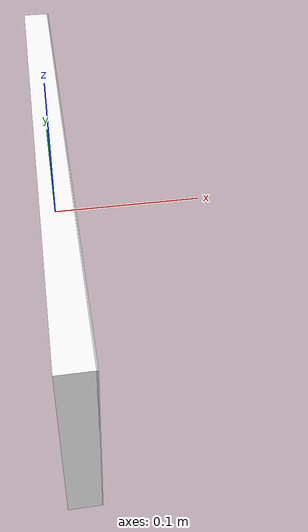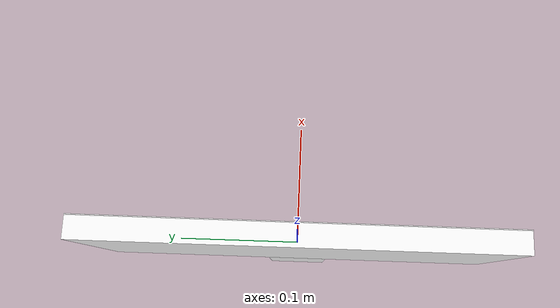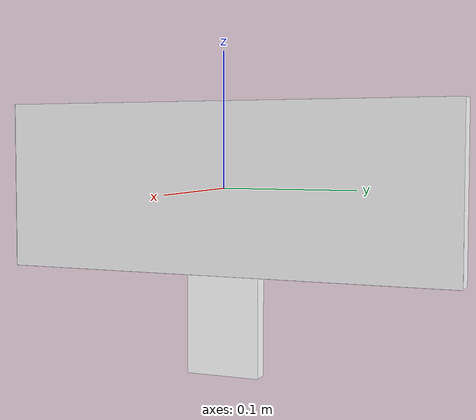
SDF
<?xml version='1.0'?>
<sdf version='1.7'>
<plugin filename="gz-sim-contact-system"
          name="gz::sim::systems::Contact">
    </plugin>
  <model name='start_sign'>
    <link name='link_0'>
      <inertial>
        <mass>1</mass>
        <inertia>
          <ixx>1</ixx>
          <ixy>0</ixy>
          <ixz>0</ixz>
          <iyy>1</iyy>
          <iyz>0</iyz>
          <izz>1</izz>
        </inertia>

      </inertial>
      <pose>0 -0 0 0 -0 0</pose>
      <self_collide>0</self_collide>
      <enable_wind>0</enable_wind>
      <kinematic>0</kinematic>
      <visual name='visual'>
        <pose>0 0 0 0 -0 0</pose>
        <geometry>
          <box>
            <size>0.01897 0.348892 0.127526</size>
          </box>
        </geometry>
        <material>
          <diffuse>1.0 1.0 1.0</diffuse>
          <specular>1.0 1.0 1.0</specular>
          <pbr>
          <metal>
          <albedo_map>materials/textures/green.png</albedo_map>
          </metal>
          </pbr>
          <shader type='pixel'/>
        </material>
        <transparency>0</transparency>
        <cast_shadows>1</cast_shadows>
      </visual>

      <collision name='collision'>
        <laser_retro>0</laser_retro>
        <max_contacts>10</max_contacts>
        <pose>0 0 0 0 -0 0</pose>
        <geometry>
          <box>
            <size>0.01897 0.348892 0.127526</size>
          </box>
        </geometry>

      </collision>
    <sensor name='sensor_contact' type='contact'>
          <contact>
            <collision>collision</collision>
            <topic>/collision_detect</topic>
          </contact>
          <always_on>1</always_on>
          <update_rate>100</update_rate>
        </sensor>
    </link>
    <link name='link_2'>
      <inertial>
        <mass>1</mass>
        <inertia>
          <ixx>1</ixx>
          <ixy>0</ixy>
          <ixz>0</ixz>
          <iyy>1</iyy>
          <iyz>0</iyz>
          <izz>1</izz>
        </inertia>

      </inertial>
      <pose>0.009485 -0 0 0 -0 0</pose>
      <self_collide>0</self_collide>
      <enable_wind>0</enable_wind>
      <kinematic>0</kinematic>
      <visual name='visual'>
        <pose>0 0 0 0 -0 0</pose>
        <geometry>
          <box>
            <size>0.001 0.348892 0.127526</size>
          </box>
        </geometry>
        <material>
          <diffuse>1.0 1.0 1.0</diffuse>
          <specular>1.0 1.0 1.0</specular>
          <pbr>
          <metal>
          <albedo_map>materials/textures/start.png</albedo_map>
          </metal>
          </pbr>
          <shader type='pixel'/>
        </material>
        <transparency>0.2</transparency>
        <cast_shadows>0</cast_shadows>
      </visual>
      <collision name='collision'>
        <laser_retro>0</laser_retro>
        <max_contacts>10</max_contacts>
        <pose>0 0 0 0 -0 0</pose>
        <geometry>
          <box>
            <size>0.001897 0.348892 0.127526</size>
          </box>
        </geometry>

      </collision>
    <sensor name='sensor_contact' type='contact'>
          <contact>
            <collision>collision</collision>
            <topic>/collision_detect</topic>
          </contact>
          <always_on>1</always_on>
          <update_rate>100</update_rate>
        </sensor>
    </link>
    <link name='link_1'>
      <inertial>
        <mass>9.52726e-05</mass>
        <inertia>
          <ixx>1</ixx>
          <ixy>0</ixy>
          <ixz>0</ixz>
          <iyy>1</iyy>
          <iyz>0</iyz>
          <izz>1</izz>
        </inertia>
        <pose>0 0 0 0 -0 0</pose>
      </inertial>
      <pose>-0.002789 -0 -0.068834 0 -0 0</pose>
      <self_collide>0</self_collide>
      <enable_wind>0</enable_wind>
      <kinematic>0</kinematic>
      <visual name='visual'>
        <pose>0 0 0 0 -0 0</pose>
        <geometry>
          <box>
            <size>0.012242 0.055737 0.139564</size>
          </box>
        </geometry>
        <material>
          <diffuse>1.0 1.0 1.0</diffuse>
          <specular>1.0 1.0 1.0</specular>
          <pbr>
          <metal>
          <albedo_map>materials/textures/blue.png</albedo_map>
          </metal>
          </pbr>
          <shader type='pixel'/>
        </material>
        <transparency>0</transparency>
        <cast_shadows>1</cast_shadows>
      </visual>
      <collision name='collision'>
        <laser_retro>0</laser_retro>
        <max_contacts>10</max_contacts>
        <pose>0 0 0 0 -0 0</pose>
        <geometry>
          <box>
            <size>0.012242 0.055737 0.139564</size>
          </box>
        </geometry>
      </collision>
    <sensor name='sensor_contact' type='contact'>
          <contact>
            <collision>collision</collision>
            <topic>/collision_detect</topic>
          </contact>
          <always_on>1</always_on>
          <update_rate>100</update_rate>
        </sensor>
    </link>

    <static>1</static>
    <allow_auto_disable>1</allow_auto_disable>
  </model>
</sdf>
